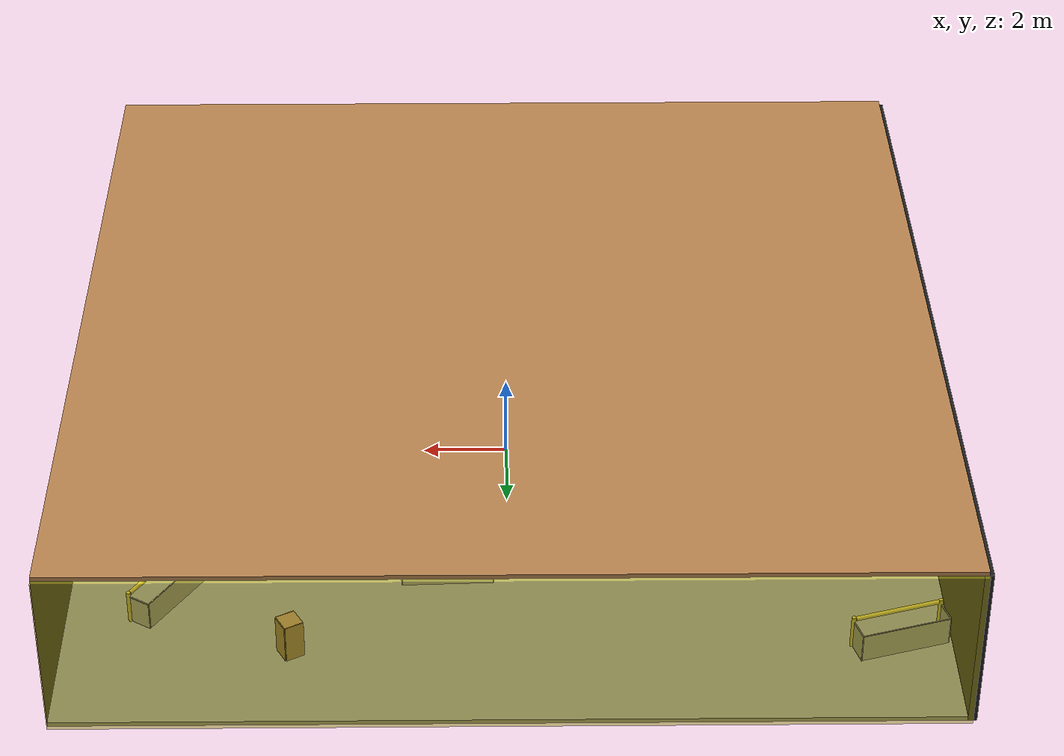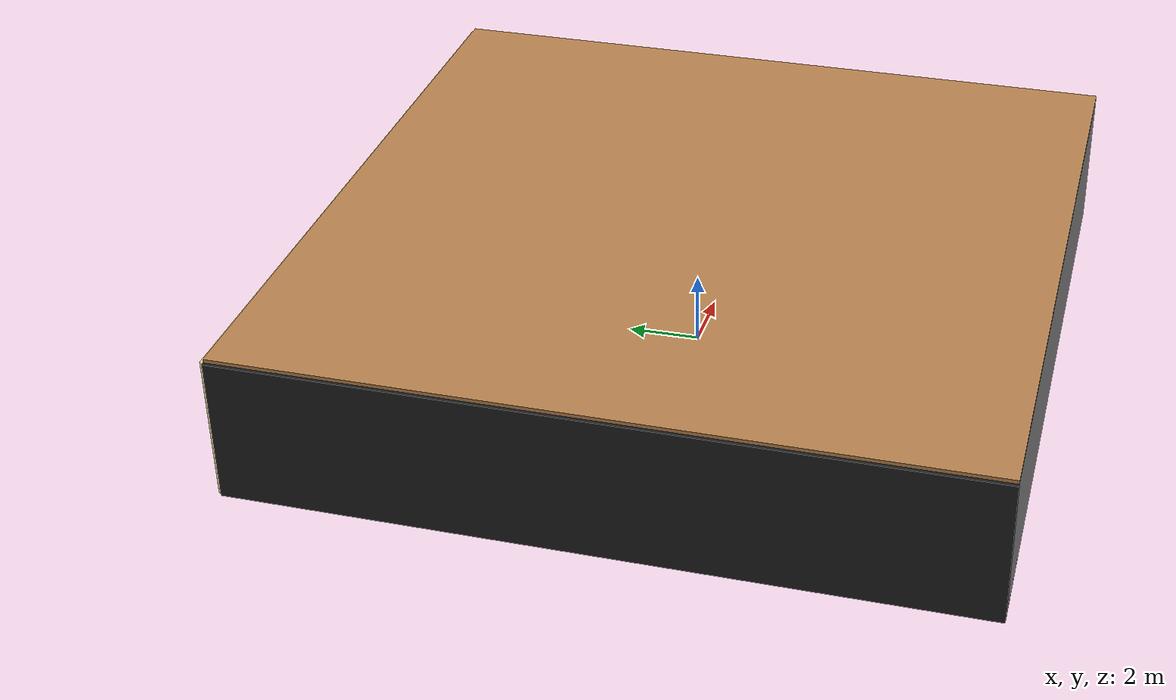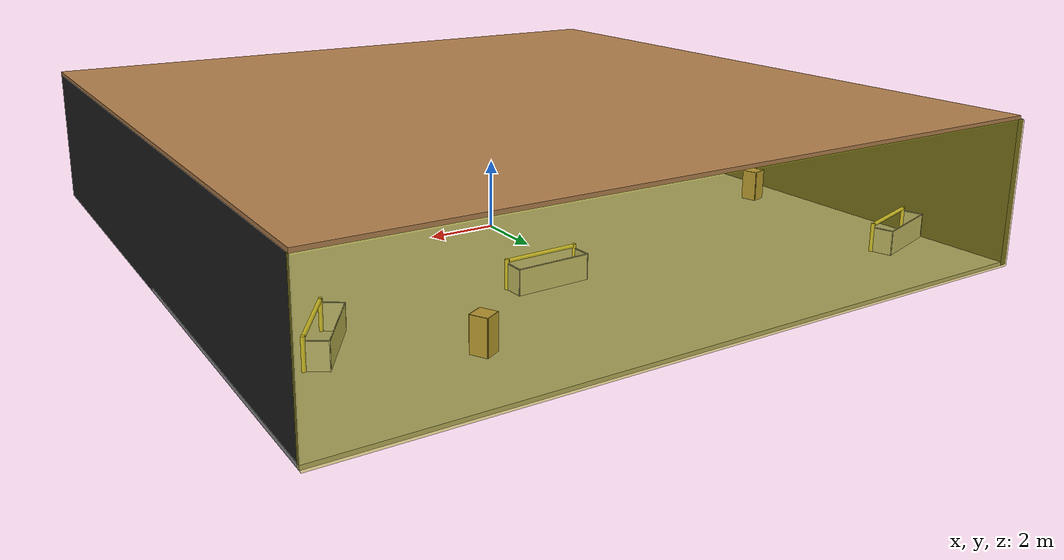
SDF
<sdf version="1.4">
 <world name="default">
  <physics type="ode">
   <max_step_size>0.001</max_step_size>
   <real_time_factor>1</real_time_factor>
   <real_time_update_rate>1000</real_time_update_rate>
   <gravity>0 0 -9.8</gravity>
  </physics>
  <scene><ambient>0.4 0.4 0.4 1</ambient><background>0.7 0.7 0.7 1</background><shadows>1</shadows></scene>
  <model name="Surrounding">
   <static>1</static>
   <link name="Ceiling">
    <collision name="Ceiling_Collision"><geometry><box><size>20 20 0.1</size></box></geometry></collision>
    <visual name="Ceiling_Visual">
     <geometry><box><size>20 20 0.1</size></box></geometry>
     <material>
      <script><uri>file://media/materials/scripts/gazebo.material</uri><name>Gazebo/Wood</name></script>
     </material>
    </visual>
    <pose>0 0 4.05 0 0 0</pose>
   </link>
   <link name="Wall_South">
    <collision name="Wall_South_Collision">
     <geometry><box><size>20 0 4</size></box></geometry>
     <pose>0 0 2 0 -0 0</pose>
    </collision>
    <visual name="Wall_South_Visual">
     <pose>0 0 2 0 -0 0</pose>
     <geometry><box><size>20 0 4</size></box></geometry>
     <material>
      <script><uri>file://media/materials/scripts/gazebo.material</uri><name>Gazebo/LightOff</name></script>
     </material>
    </visual>
    <velocity_decay><linear>0</linear><angular>0</angular></velocity_decay>
    <pose>0 -10 0 0 -0 0</pose>
   </link>
   <link name="Wall_East">
    <collision name="Wall_21_Collision">
     <geometry><box><size>20 0 4</size></box></geometry>
     <pose>0 0 2 0 -0 0</pose>
    </collision>
    <visual name="Wall_21_Visual">
     <pose>0 0 2 0 -0 0</pose>
     <geometry><box><size>20 0 4</size></box></geometry>
     <material>
      <script><uri>file://media/materials/scripts/gazebo.material</uri><name>Gazebo/Black</name></script>
     </material>
    </visual>
    <velocity_decay><linear>0</linear><angular>0</angular></velocity_decay>
    <pose>10 0 0 0 -0 1.5708</pose>
   </link>
   <link name="Wall_North">
    <collision name="Wall_22_Collision">
     <geometry><box><size>20 0.2 4</size></box></geometry>
     <pose>0 0 2 0 -0 0</pose>
    </collision>
    <visual name="Wall_22_Visual">
     <pose>0 0 2 0 -0 0</pose>
     <geometry><box><size>20 0.2 4</size></box></geometry>
     <material>
      <script>
       <uri>file://media/materials/scripts/gazebo.material</uri>
       <name>Gazebo/YellowTransparent</name>
      </script>
     </material>
    </visual>
    <velocity_decay><linear>0</linear><angular>0</angular></velocity_decay>
    <pose>0 10 0 0 -0 0</pose>
   </link>
   <link name="Wall_West">
    <collision name="Wall_23_Collision">
     <geometry><box><size>20 0.2 4</size></box></geometry>
     <pose>0 0 2 0 -0 0</pose>
    </collision>
    <visual name="Wall_23_Visual">
     <pose>0 0 2 0 -0 0</pose>
     <geometry><box><size>20 0.2 4</size></box></geometry>
     <material>
      <script><uri>file://media/materials/scripts/gazebo.material</uri><name>Gazebo/Black</name></script>
     </material>
    </visual>
    <velocity_decay><linear>0</linear><angular>0</angular></velocity_decay>
    <pose>-10 0 0 0 0 -1.5708</pose>
   </link>
   <link name="Ground_link">
    <collision name="collision">
     <pose>0 0 .05 0 -0 0</pose>
     <geometry><box><size>20 20 0.1</size></box></geometry>
    </collision>
    <visual name="visual">
     <pose>0 0 .05 0 -0 0</pose>
     <geometry><box><size>20 20 0.1</size></box></geometry>
     <material>
      <script><uri>file://media/materials/scripts/gazebo.material</uri><name>Gazebo/Grey</name></script>
     </material>
    </visual>
   </link>
   <static>1</static>
  </model>
  <spherical_coordinates>
   <surface_model>EARTH_WGS84</surface_model>
   <latitude_deg>0</latitude_deg>
   <longitude_deg>0</longitude_deg>
   <elevation>0</elevation>
   <heading_deg>0</heading_deg>
  </spherical_coordinates>
  <light name="lightball_0" type="diffuse">
   <diffuse>0.8 0.8 0.8 1</diffuse>
   <specular>0.2 0.2 0.2 1</specular>
   <attenuation>
    <range>100</range>
    <constant>0.7</constant>
    <linear>0.01</linear>
    <quadratic>0.001</quadratic>
   </attenuation>
   <direction>-0.5 0.1 -0.9</direction>
   <pose>8.06502436698 2.9309177626 1.5270471531 0 0 0</pose>
  </light>
  <include><uri>model://cabinet</uri><pose>-8.58446421885 2.07906295174 0 0 0 1.85138262035</pose></include>
  <include>
   <uri>model://robocup_3Dsim_goal</uri>
   <pose>-8.64659533178 7.28259049145 0 0 0 1.86218548054</pose>
  </include>
  <include><uri>model://cabinet</uri><pose>-5.61088977147 -5.28583356021 0 0 0 2.43891954293</pose></include>
  <include><uri>model://table</uri><pose>-1.75112563063 -1.80253998634 0 0 0 1.21777542488</pose></include>
  <include><uri>model://cabinet</uri><pose>2.33234825402 -7.6713608914 0 0 0 0.351044732068</pose></include>
  <include>
   <uri>model://robocup_3Dsim_goal</uri>
   <pose>1.40943240495 4.75593721236 0 0 0 1.6056890399</pose>
  </include>
  <include><uri>model://cabinet</uri><pose>4.85953965821 7.69233889685 0 0 0 0.504273199901</pose></include>
  <include><uri>model://cabinet</uri><pose>6.88776004512 -1.46623045765 0 0 0 0.798684906074</pose></include>
  <include>
   <uri>model://robocup_3Dsim_goal</uri>
   <pose>7.97290732259 5.66595987155 0 0 0 2.57800369271</pose>
  </include>
 </world>
</sdf>

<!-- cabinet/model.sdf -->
<sdf version="1.5">
  <model name="cabinet">
    <static>true</static>
    <link name="cabinet_bottom_plate">
      <inertial>
        <pose>0 0 -1 0 0 0</pose>
        <inertia>
          <ixx>2.050000</ixx>
          <ixy>0</ixy>
          <ixz>0</ixz>
          <iyy>2.050000</iyy>
          <iyz>0</iyz>
          <izz>2.050000</izz>
        </inertia>
        <mass>25.000000</mass>
      </inertial>
      <collision name="cabinet_bottom_plate_geom">
        <pose>0 0 0.010000 0 0 0</pose>
        <geometry>
          <box>
            <size>0.450000 0.450000 0.020000</size>
          </box>
        </geometry>
      </collision>
      <visual name="cabinet_bottom_plate_geom_visual">
        <pose>0 0 0.010000 0 0 0</pose>
        <geometry>
          <box>
            <size>0.450000 0.450000 0.020000</size>
          </box>
        </geometry>
        <material>
          <script>
            <uri>model://media/materials/scripts/gazebo.material</uri>
            <name>Gazebo/Wood</name>
          </script>
        </material>
      </visual>
      <collision name="cabinet_bottom_plate_geom_cabinet_back_plate">
        <pose>0.235000 0 0.510000 0 0 0</pose>
        <geometry>
          <box>
            <size>0.020000 0.450000 1.020000</size>
          </box>
        </geometry>
      </collision>
      <visual name="cabinet_bottom_plate_geom_cabinet_back_plate_visual">
        <pose>0.235000 0 0.510000 0 0 0</pose>
        <geometry>
          <box>
            <size>0.020000 0.450000 1.020000</size>
          </box>
        </geometry>
        <material>
          <script>
            <uri>model://media/materials/scripts/gazebo.material</uri>
            <name>Gazebo/Wood</name>
          </script>
        </material>
      </visual>
      <collision name="cabinet_bottom_plate_geom_cabinet_left_plate">
        <pose>0 0.235000 0.510000 0 0 0</pose>
        <geometry>
          <box>
            <size>0.450000 0.020000 1.020000</size>
          </box>
        </geometry>
      </collision>
      <visual name="cabinet_bottom_plate_geom_cabinet_left_plate_visual">
        <pose>0 0.235000 0.510000 0 0 0</pose>
        <geometry>
          <box>
            <size>0.450000 0.020000 1.020000</size>
          </box>
        </geometry>
        <material>
          <script>
            <uri>model://media/materials/scripts/gazebo.material</uri>
            <name>Gazebo/Wood</name>
          </script>
        </material>
      </visual>
      <collision name="cabinet_bottom_plate_geom_cabinet_middle_plate">
        <pose>0 0 0.510000 0 0 0</pose>
        <geometry>
          <box>
            <size>0.450000 0.450000 0.020000</size>
          </box>
        </geometry>
      </collision>
      <visual name="cabinet_bottom_plate_geom_cabinet_middle_plate_visual">
        <pose>0 0 0.510000 0 0 0</pose>
        <geometry>
          <box>
            <size>0.450000 0.450000 0.020000</size>
          </box>
        </geometry>
        <material>
          <script>
            <uri>model://media/materials/scripts/gazebo.material</uri>
            <name>Gazebo/Wood</name>
          </script>
        </material>
      </visual>
      <collision name="cabinet_bottom_plate_geom_cabinet_right_plate">
        <pose>0 -0.235000 0.510000 0 0 0</pose>
        <geometry>
          <box>
            <size>0.450000 0.020000 1.020000</size>
          </box>
        </geometry>
      </collision>
      <visual name="cabinet_bottom_plate_geom_cabinet_right_plate_visual">
        <pose>0 -0.235000 0.510000 0 0 0</pose>
        <geometry>
          <box>
            <size>0.450000 0.020000 1.020000</size>
          </box>
        </geometry>
        <material>
          <script>
            <uri>model://media/materials/scripts/gazebo.material</uri>
            <name>Gazebo/Wood</name>
          </script>
        </material>
      </visual>
      <collision name="cabinet_bottom_plate_geom_cabinet_top_plate">
        <pose>0 0 1.010000 0 0 0</pose>
        <geometry>
          <box>
            <size>0.450000 0.450000 0.020000</size>
          </box>
        </geometry>
      </collision>
      <visual name="cabinet_bottom_plate_geom_cabinet_top_plate_visual">
        <pose>0 0 1.010000 0 0 0</pose>
        <geometry>
          <box>
            <size>0.450000 0.450000 0.020000</size>
          </box>
        </geometry>
        <material>
          <script>
            <uri>model://media/materials/scripts/gazebo.material</uri>
            <name>Gazebo/Wood</name>
          </script>
        </material>
      </visual>
    </link>
  </model>
</sdf>

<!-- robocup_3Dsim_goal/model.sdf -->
<sdf version="1.5">
  <model name="robocup_3d_goal">
    <static>true</static>
    <link name="left_post">
      <pose>0 1.05 0.45 0 0 0</pose>
      <collision name="collision">
        <geometry>
          <cylinder>
            <radius>0.05</radius>
            <length>0.9</length>
          </cylinder>
        </geometry>
      </collision>
      <visual name="visual">
        <geometry>
          <cylinder>
            <radius>0.05</radius>
            <length>0.9</length>
          </cylinder>
        </geometry>
        <material>
          <script>
            <uri>file://media/materials/scripts/gazebo.material</uri>
            <name>Gazebo/ZincYellow</name>
          </script>
        </material>
      </visual>
    </link>
    <link name="left_support_horiz_lower">
      <pose>0.30 1.05 0.01 0 0 0</pose>
      <collision name="collision">
        <geometry>
          <box>
            <size>0.50 0.02 0.02</size>
          </box>
        </geometry>
      </collision>
      <visual name="visual">
        <geometry>
          <box>
            <size>0.50 0.02 0.02</size>
          </box>
        </geometry>
        <material>
          <script>
            <uri>file://media/materials/scripts/gazebo.material</uri>
            <name>Gazebo/White</name>
          </script>
        </material>
      </visual>
    </link>
    <link name="left_support_horiz_upper">
      <pose>0.30 1.05 0.79 0 0 0</pose>
      <collision name="collision">
        <geometry>
          <box>
            <size>0.50 0.02 0.02</size>
          </box>
        </geometry>
      </collision>
      <visual name="visual">
        <geometry>
          <box>
            <size>0.50 0.02 0.02</size>
          </box>
        </geometry>
        <material>
          <script>
            <uri>file://media/materials/scripts/gazebo.material</uri>
            <name>Gazebo/White</name>
          </script>
        </material>
      </visual>
    </link>
    <link name="left_support_vertical">
      <pose>0.56 1.05 0.4 0 1.5708 0</pose>
      <collision name="collision">
        <geometry>
          <box>
            <size>0.80 0.02 0.02</size>
          </box>
        </geometry>
      </collision>
      <visual name="visual">
        <geometry>
          <box>
            <size>0.80 0.02 0.02</size>
          </box>
        </geometry>
        <material>
          <script>
            <uri>file://media/materials/scripts/gazebo.material</uri>
            <name>Gazebo/White</name>
          </script>
        </material>
      </visual>
    </link>
    <link name="right_support_horiz_lower">
      <pose>0.30 -1.05 0.01 0 0 0</pose>
      <collision name="collision">
        <geometry>
          <box>
            <size>0.50 0.02 0.02</size>
          </box>
        </geometry>
      </collision>
      <visual name="visual">
        <geometry>
          <box>
            <size>0.50 0.02 0.02</size>
          </box>
        </geometry>
        <material>
          <script>
            <uri>file://media/materials/scripts/gazebo.material</uri>
            <name>Gazebo/White</name>
          </script>
        </material>
      </visual>
    </link>
    <link name="right_support_horiz_upper">
      <pose>0.30 -1.05 0.79 0 0 0</pose>
      <collision name="collision">
        <geometry>
          <box>
            <size>0.50 0.02 0.02</size>
          </box>
        </geometry>
      </collision>
      <visual name="visual">
        <geometry>
          <box>
            <size>0.50 0.02 0.02</size>
          </box>
        </geometry>
        <material>
          <script>
            <uri>file://media/materials/scripts/gazebo.material</uri>
            <name>Gazebo/White</name>
          </script>
        </material>
      </visual>
    </link>
    <link name="right_support_vertical">
      <pose>0.56 -1.05 0.4 0 1.5708 0</pose>
      <collision name="collision">
        <geometry>
          <box>
            <size>0.80 0.02 0.02</size>
          </box>
        </geometry>
      </collision>
      <visual name="visual">
        <geometry>
          <box>
            <size>0.80 0.02 0.02</size>
          </box>
        </geometry>
        <material>
          <script>
            <uri>file://media/materials/scripts/gazebo.material</uri>
            <name>Gazebo/White</name>
          </script>
        </material>
      </visual>
    </link>
    <link name="center_support_horiz_lower">
      <pose>0.56 0 0.01 0 1.5708 0</pose>
      <collision name="collision">
        <geometry>
          <box>
            <size>0.02 2.08 0.02</size>
          </box>
        </geometry>
      </collision>
      <visual name="visual">
        <geometry>
          <box>
            <size>0.02 2.08 0.02</size>
          </box>
        </geometry>
        <material>
          <script>
            <uri>file://media/materials/scripts/gazebo.material</uri>
            <name>Gazebo/White</name>
          </script>
        </material>
      </visual>
    </link>
    <link name="center_support_horiz_upper">
      <pose>0.56 0 0.79 0 1.5708 0</pose>
      <collision name="collision">
        <geometry>
          <box>
            <size>0.02 2.08 0.02</size>
          </box>
        </geometry>
      </collision>
      <visual name="visual">
        <geometry>
          <box>
            <size>0.02 2.08 0.02</size>
          </box>
        </geometry>
        <material>
          <script>
            <uri>file://media/materials/scripts/gazebo.material</uri>
            <name>Gazebo/White</name>
          </script>
        </material>
      </visual>
    </link>
    <link name="right_post">
      <pose>0 -1.05 0.45 0 0 0</pose>
      <collision name="collision">
        <geometry>
          <cylinder>
            <radius>0.05</radius>
            <length>0.9</length>
          </cylinder>
        </geometry>
      </collision>
      <visual name="visual">
        <geometry>
          <cylinder>
            <radius>0.05</radius>
            <length>0.9</length>
          </cylinder>
        </geometry>
        <material>
          <script>
            <uri>file://media/materials/scripts/gazebo.material</uri>
            <name>Gazebo/ZincYellow</name>
          </script>
        </material>
      </visual>
    </link>
    <link name="crossbar">
      <pose>0 0 0.85 1.57 1.57 0</pose>
      <collision name="collision">
        <geometry>
          <cylinder>
            <radius>0.05</radius>
            <length>2.0</length>
          </cylinder>
        </geometry>
      </collision>
      <visual name="visual">
        <geometry>
          <cylinder>
            <radius>0.05</radius>
            <length>2.0</length>
          </cylinder>
        </geometry>
        <material>
          <script>
            <uri>file://media/materials/scripts/gazebo.material</uri>
            <name>Gazebo/ZincYellow</name>
          </script>
        </material>
      </visual>
    </link>
    <link name="center_net">
      <pose>0.56 0 0.40 0 0 0</pose>
      <collision name="collision">
        <geometry>
          <box>
            <size>0.01 2.1 0.80</size>
          </box>
        </geometry>
      </collision>
      <visual name="visual">
        <geometry>
          <box>
            <size>0.01 2.1 0.80</size>
          </box>
        </geometry>
        <material>
          <script>
            <uri>model://../model_source/models/robocup09_spl_field/materials/scripts/</uri>
            <uri>model://../model_source/models/robocup09_spl_field/materials/textures/</uri>
            <name>RoboCup/Net</name>
          </script>
        </material>
      </visual>
    </link>
    <link name="left_net">
      <pose>0.30 1.05 0.40 0 0 0</pose>
      <collision name="collision">
        <geometry>
          <box>
            <size>0.50 0.01 0.76</size>
          </box>
        </geometry>
      </collision>
      <visual name="visual">
        <geometry>
          <box>
            <size>0.50 0.01 0.76</size>
          </box>
        </geometry>
        <material>
          <script>
            <uri>model://../model_source/models/robocup09_spl_field/materials/scripts/</uri>
            <uri>model://../model_source/models/robocup09_spl_field/materials/textures/</uri>
            <name>RoboCup/Net</name>
          </script>
        </material>
      </visual>
    </link>
    <link name="right_net">
      <pose>0.30 -1.05 0.40 0 0 0</pose>
      <collision name="collision">
        <geometry>
          <box>
            <size>0.50 0.01 0.76</size>
          </box>
        </geometry>
      </collision>
      <visual name="visual">
        <geometry>
          <box>
            <size>0.50 0.01 0.76</size>
          </box>
        </geometry>
        <material>
          <script>
            <uri>model://../model_source/models/robocup09_spl_field/materials/scripts/</uri>
            <uri>model://../model_source/models/robocup09_spl_field/materials/textures/</uri>
            <name>RoboCup/Net</name>
          </script>
        </material>
      </visual>
    </link>
  </model>
</sdf>

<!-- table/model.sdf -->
<sdf version="1.5">
  <model name="table">
    <static>true</static>
    <link name="link">
      <collision name="surface">
        <pose>0 0 1.0 0 0 0</pose>
        <geometry>
          <box>
            <size>1.5 0.8 0.03</size>
          </box>
        </geometry>
        <surface>
          <friction>
            <ode>
              <mu>0.6</mu>
              <mu2>0.6</mu2>
            </ode>
          </friction>
        </surface>
      </collision>
      <visual name="visual1">
        <pose>0 0 1.0 0 0 0</pose>
        <geometry>
          <box>
            <size>1.5 0.8 0.03</size>
          </box>
        </geometry>
        <material>
          <script>
            <uri>model://media/materials/scripts/gazebo.material</uri>
            <name>Gazebo/Wood</name>
          </script>
        </material>
      </visual>
      <collision name="front_left_leg">
        <pose>0.68 0.38 0.5 0 0 0</pose>
        <geometry>
          <cylinder>
            <radius>0.02</radius>
            <length>1.0</length>
          </cylinder>
        </geometry>
      </collision>
      <visual name="front_left_leg">
        <pose>0.68 0.38 0.5 0 0 0</pose>
        <geometry>
          <cylinder>
            <radius>0.02</radius>
            <length>1.0</length>
          </cylinder>
        </geometry>
        <material>
          <script>
            <uri>model://media/materials/scripts/gazebo.material</uri>
            <name>Gazebo/Grey</name>
          </script>
        </material>
      </visual>
      <collision name="front_right_leg">
        <pose>0.68 -0.38 0.5 0 0 0</pose>
        <geometry>
          <cylinder>
            <radius>0.02</radius>
            <length>1.0</length>
          </cylinder>
        </geometry>
      </collision>
      <visual name="front_right_leg">
        <pose>0.68 -0.38 0.5 0 0 0</pose>
        <geometry>
          <cylinder>
            <radius>0.02</radius>
            <length>1.0</length>
          </cylinder>
        </geometry>
        <material>
          <script>
            <uri>model://media/materials/scripts/gazebo.material</uri>
            <name>Gazebo/Grey</name>
          </script>
        </material>
      </visual>
      <collision name="back_right_leg">
        <pose>-0.68 -0.38 0.5 0 0 0</pose>
        <geometry>
          <cylinder>
            <radius>0.02</radius>
            <length>1.0</length>
          </cylinder>
        </geometry>
      </collision>
      <visual name="back_right_leg">
        <pose>-0.68 -0.38 0.5 0 0 0</pose>
        <geometry>
          <cylinder>
            <radius>0.02</radius>
            <length>1.0</length>
          </cylinder>
        </geometry>
        <material>
          <script>
            <uri>model://media/materials/scripts/gazebo.material</uri>
            <name>Gazebo/Grey</name>
          </script>
        </material>
      </visual>
      <collision name="back_left_leg">
        <pose>-0.68 0.38 0.5 0 0 0</pose>
        <geometry>
          <cylinder>
            <radius>0.02</radius>
            <length>1.0</length>
          </cylinder>
        </geometry>
      </collision>
      <visual name="back_left_leg">
        <pose>-0.68 0.38 0.5 0 0 0</pose>
        <geometry>
          <cylinder>
            <radius>0.02</radius>
            <length>1.0</length>
          </cylinder>
        </geometry>
        <material>
          <script>
            <uri>model://media/materials/scripts/gazebo.material</uri>
            <name>Gazebo/Grey</name>
          </script>
        </material>
      </visual>
    </link>
  </model>
</sdf>
